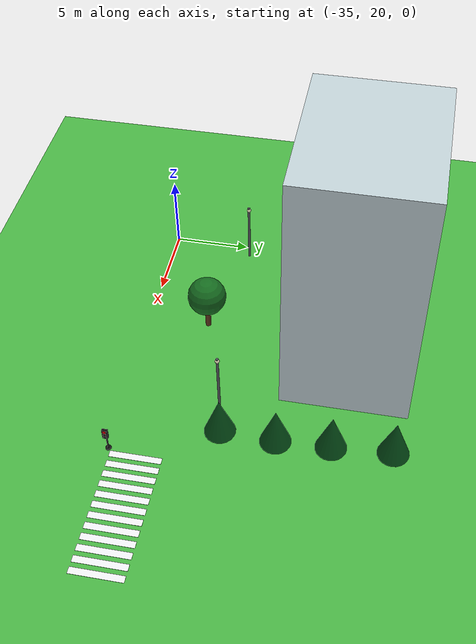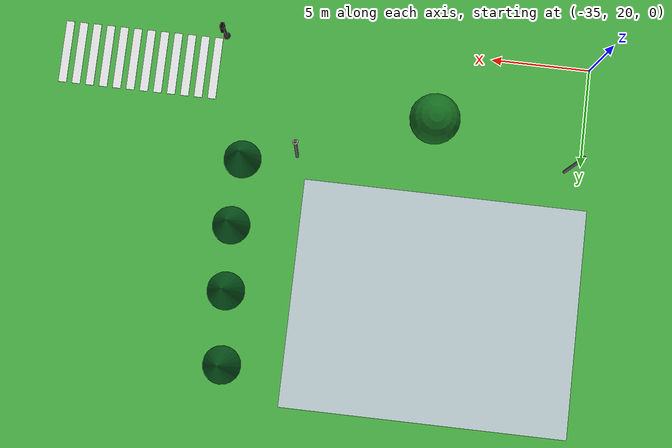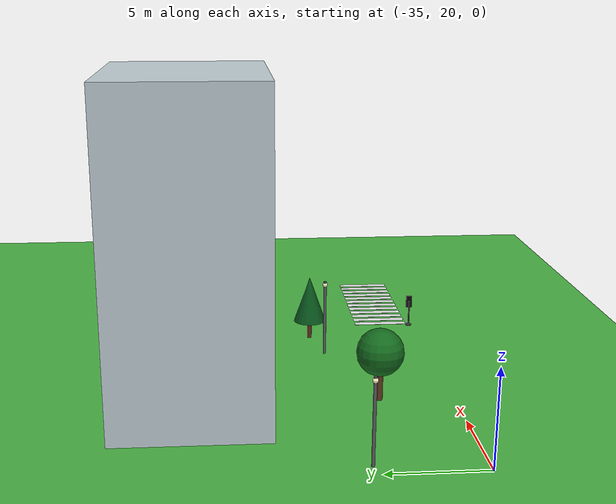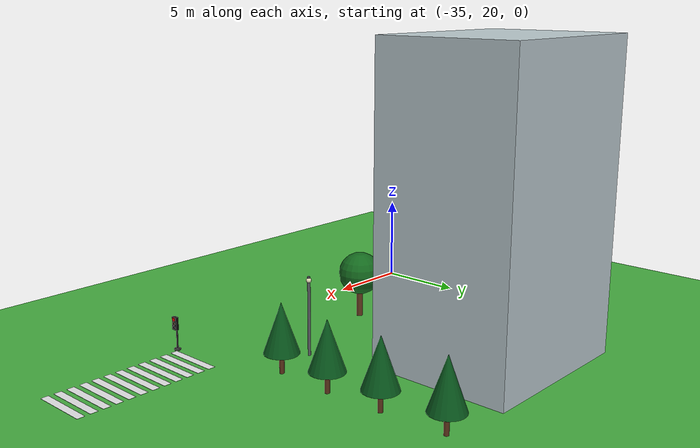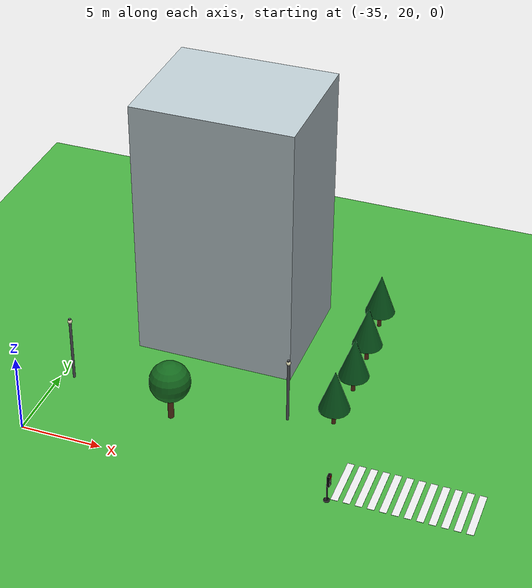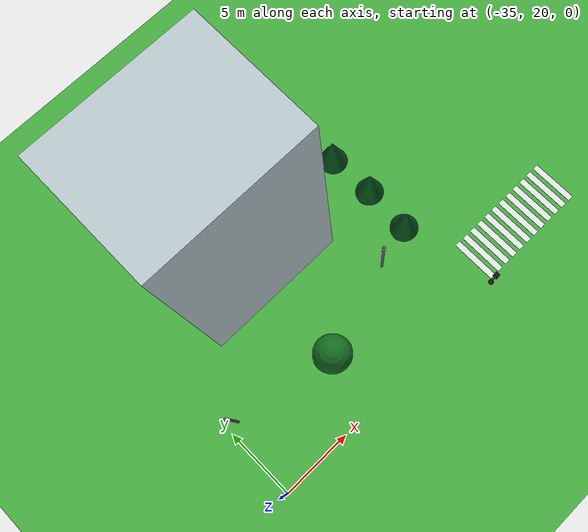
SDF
<sdf version="1.10">
 <world name="city_second">
  <model name="ground_plane">
   <static>true</static>
   <link name="link">
    <collision name="collision">
     <geometry><plane><normal>0 0 1</normal><size>300 300</size></plane></geometry>
    </collision>
    <visual name="visual">
     <geometry><plane><normal>0 0 1</normal><size>300 300</size></plane></geometry>
     <material>
      <ambient>0.280000001 0.689999998 0.25999999 1</ambient>
      <diffuse>0.280000001 0.689999998 0.25999999 1</diffuse>
      <specular>0.0299999993 0.0299999993 0.0299999993 1</specular>
     </material>
    </visual>
    <inertial>
     <mass>1</mass>
     <inertia><ixx>1</ixx><ixy>0</ixy><ixz>0</ixz><iyy>1</iyy><iyz>0</iyz><izz>1</izz></inertia>
    </inertial>
   </link>
  </model>
  <model name="house_3_1_1">
   <static>true</static>
   <pose>-26.744800000000001 33.608600000000003 8.5 0 0 0</pose>
   <link name="link">
    <collision name="collision"><geometry><box><size>10 8 17</size></box></geometry></collision>
    <visual name="visual">
     <geometry><box><size>10 8 17</size></box></geometry>
     <material>
      <ambient>0.74000001 0.800000012 0.819999993 1</ambient>
      <diffuse>0.74000001 0.800000012 0.819999993 1</diffuse>
      <specular>0.0299999993 0.0299999993 0.0299999993 1</specular>
     </material>
    </visual>
    <inertial>
     <mass>1</mass>
     <inertia><ixx>1</ixx><ixy>0</ixy><ixz>0</ixz><iyy>1</iyy><iyz>0</iyz><izz>1</izz></inertia>
    </inertial>
   </link>
  </model>
  <model name="crosswalk_h_1_1_south_7_6">
   <static>true</static>
   <pose>-12.1145 22.0322 0.017000000000000001 0 0 0</pose>
   <link name="stripe_1">
    <collision name="collision">
     <geometry><box><size>0.41999999999999998 3.2000000000000002 0.01</size></box></geometry>
    </collision>
    <visual name="visual">
     <geometry><box><size>0.41999999999999998 3.2000000000000002 0.01</size></box></geometry>
     <material>
      <ambient>0.920000017 0.920000017 0.930000007 1</ambient>
      <diffuse>0.920000017 0.920000017 0.930000007 1</diffuse>
      <specular>0.0299999993 0.0299999993 0.0299999993 1</specular>
     </material>
    </visual>
    <pose>-3.8500000000000001 0 0 0 0 0</pose>
    <inertial>
     <mass>1</mass>
     <inertia><ixx>1</ixx><ixy>0</ixy><ixz>0</ixz><iyy>1</iyy><iyz>0</iyz><izz>1</izz></inertia>
    </inertial>
   </link>
   <link name="stripe_2">
    <collision name="collision">
     <geometry><box><size>0.41999999999999998 3.2000000000000002 0.01</size></box></geometry>
    </collision>
    <visual name="visual">
     <geometry><box><size>0.41999999999999998 3.2000000000000002 0.01</size></box></geometry>
     <material>
      <ambient>0.920000017 0.920000017 0.930000007 1</ambient>
      <diffuse>0.920000017 0.920000017 0.930000007 1</diffuse>
      <specular>0.0299999993 0.0299999993 0.0299999993 1</specular>
     </material>
    </visual>
    <pose>-3.1500000000000004 0 0 0 0 0</pose>
    <inertial>
     <mass>1</mass>
     <inertia><ixx>1</ixx><ixy>0</ixy><ixz>0</ixz><iyy>1</iyy><iyz>0</iyz><izz>1</izz></inertia>
    </inertial>
   </link>
   <link name="stripe_3">
    <collision name="collision">
     <geometry><box><size>0.41999999999999998 3.2000000000000002 0.01</size></box></geometry>
    </collision>
    <visual name="visual">
     <geometry><box><size>0.41999999999999998 3.2000000000000002 0.01</size></box></geometry>
     <material>
      <ambient>0.920000017 0.920000017 0.930000007 1</ambient>
      <diffuse>0.920000017 0.920000017 0.930000007 1</diffuse>
      <specular>0.0299999993 0.0299999993 0.0299999993 1</specular>
     </material>
    </visual>
    <pose>-2.4499999999999993 0 0 0 0 0</pose>
    <inertial>
     <mass>1</mass>
     <inertia><ixx>1</ixx><ixy>0</ixy><ixz>0</ixz><iyy>1</iyy><iyz>0</iyz><izz>1</izz></inertia>
    </inertial>
   </link>
   <link name="stripe_4">
    <collision name="collision">
     <geometry><box><size>0.41999999999999998 3.2000000000000002 0.01</size></box></geometry>
    </collision>
    <visual name="visual">
     <geometry><box><size>0.41999999999999998 3.2000000000000002 0.01</size></box></geometry>
     <material>
      <ambient>0.920000017 0.920000017 0.930000007 1</ambient>
      <diffuse>0.920000017 0.920000017 0.930000007 1</diffuse>
      <specular>0.0299999993 0.0299999993 0.0299999993 1</specular>
     </material>
    </visual>
    <pose>-1.75 0 0 0 0 0</pose>
    <inertial>
     <mass>1</mass>
     <inertia><ixx>1</ixx><ixy>0</ixy><ixz>0</ixz><iyy>1</iyy><iyz>0</iyz><izz>1</izz></inertia>
    </inertial>
   </link>
   <link name="stripe_5">
    <collision name="collision">
     <geometry><box><size>0.41999999999999998 3.2000000000000002 0.01</size></box></geometry>
    </collision>
    <visual name="visual">
     <geometry><box><size>0.41999999999999998 3.2000000000000002 0.01</size></box></geometry>
     <material>
      <ambient>0.920000017 0.920000017 0.930000007 1</ambient>
      <diffuse>0.920000017 0.920000017 0.930000007 1</diffuse>
      <specular>0.0299999993 0.0299999993 0.0299999993 1</specular>
     </material>
    </visual>
    <pose>-1.0500000000000007 0 0 0 0 0</pose>
    <inertial>
     <mass>1</mass>
     <inertia><ixx>1</ixx><ixy>0</ixy><ixz>0</ixz><iyy>1</iyy><iyz>0</iyz><izz>1</izz></inertia>
    </inertial>
   </link>
   <link name="stripe_6">
    <collision name="collision">
     <geometry><box><size>0.41999999999999998 3.2000000000000002 0.01</size></box></geometry>
    </collision>
    <visual name="visual">
     <geometry><box><size>0.41999999999999998 3.2000000000000002 0.01</size></box></geometry>
     <material>
      <ambient>0.920000017 0.920000017 0.930000007 1</ambient>
      <diffuse>0.920000017 0.920000017 0.930000007 1</diffuse>
      <specular>0.0299999993 0.0299999993 0.0299999993 1</specular>
     </material>
    </visual>
    <pose>-0.34999999999999964 0 0 0 0 0</pose>
    <inertial>
     <mass>1</mass>
     <inertia><ixx>1</ixx><ixy>0</ixy><ixz>0</ixz><iyy>1</iyy><iyz>0</iyz><izz>1</izz></inertia>
    </inertial>
   </link>
   <link name="stripe_7">
    <collision name="collision">
     <geometry><box><size>0.41999999999999998 3.2000000000000002 0.01</size></box></geometry>
    </collision>
    <visual name="visual">
     <geometry><box><size>0.41999999999999998 3.2000000000000002 0.01</size></box></geometry>
     <material>
      <ambient>0.920000017 0.920000017 0.930000007 1</ambient>
      <diffuse>0.920000017 0.920000017 0.930000007 1</diffuse>
      <specular>0.0299999993 0.0299999993 0.0299999993 1</specular>
     </material>
    </visual>
    <pose>0.34999999999999964 0 0 0 0 0</pose>
    <inertial>
     <mass>1</mass>
     <inertia><ixx>1</ixx><ixy>0</ixy><ixz>0</ixz><iyy>1</iyy><iyz>0</iyz><izz>1</izz></inertia>
    </inertial>
   </link>
   <link name="stripe_8">
    <collision name="collision">
     <geometry><box><size>0.41999999999999998 3.2000000000000002 0.01</size></box></geometry>
    </collision>
    <visual name="visual">
     <geometry><box><size>0.41999999999999998 3.2000000000000002 0.01</size></box></geometry>
     <material>
      <ambient>0.920000017 0.920000017 0.930000007 1</ambient>
      <diffuse>0.920000017 0.920000017 0.930000007 1</diffuse>
      <specular>0.0299999993 0.0299999993 0.0299999993 1</specular>
     </material>
    </visual>
    <pose>1.0500000000000007 0 0 0 0 0</pose>
    <inertial>
     <mass>1</mass>
     <inertia><ixx>1</ixx><ixy>0</ixy><ixz>0</ixz><iyy>1</iyy><iyz>0</iyz><izz>1</izz></inertia>
    </inertial>
   </link>
   <link name="stripe_9">
    <collision name="collision">
     <geometry><box><size>0.41999999999999998 3.2000000000000002 0.01</size></box></geometry>
    </collision>
    <visual name="visual">
     <geometry><box><size>0.41999999999999998 3.2000000000000002 0.01</size></box></geometry>
     <material>
      <ambient>0.920000017 0.920000017 0.930000007 1</ambient>
      <diffuse>0.920000017 0.920000017 0.930000007 1</diffuse>
      <specular>0.0299999993 0.0299999993 0.0299999993 1</specular>
     </material>
    </visual>
    <pose>1.75 0 0 0 0 0</pose>
    <inertial>
     <mass>1</mass>
     <inertia><ixx>1</ixx><ixy>0</ixy><ixz>0</ixz><iyy>1</iyy><iyz>0</iyz><izz>1</izz></inertia>
    </inertial>
   </link>
   <link name="stripe_10">
    <collision name="collision">
     <geometry><box><size>0.41999999999999998 3.2000000000000002 0.01</size></box></geometry>
    </collision>
    <visual name="visual">
     <geometry><box><size>0.41999999999999998 3.2000000000000002 0.01</size></box></geometry>
     <material>
      <ambient>0.920000017 0.920000017 0.930000007 1</ambient>
      <diffuse>0.920000017 0.920000017 0.930000007 1</diffuse>
      <specular>0.0299999993 0.0299999993 0.0299999993 1</specular>
     </material>
    </visual>
    <pose>2.4499999999999993 0 0 0 0 0</pose>
    <inertial>
     <mass>1</mass>
     <inertia><ixx>1</ixx><ixy>0</ixy><ixz>0</ixz><iyy>1</iyy><iyz>0</iyz><izz>1</izz></inertia>
    </inertial>
   </link>
   <link name="stripe_11">
    <collision name="collision">
     <geometry><box><size>0.41999999999999998 3.2000000000000002 0.01</size></box></geometry>
    </collision>
    <visual name="visual">
     <geometry><box><size>0.41999999999999998 3.2000000000000002 0.01</size></box></geometry>
     <material>
      <ambient>0.920000017 0.920000017 0.930000007 1</ambient>
      <diffuse>0.920000017 0.920000017 0.930000007 1</diffuse>
      <specular>0.0299999993 0.0299999993 0.0299999993 1</specular>
     </material>
    </visual>
    <pose>3.1500000000000004 0 0 0 0 0</pose>
    <inertial>
     <mass>1</mass>
     <inertia><ixx>1</ixx><ixy>0</ixy><ixz>0</ixz><iyy>1</iyy><iyz>0</iyz><izz>1</izz></inertia>
    </inertial>
   </link>
   <link name="stripe_12">
    <collision name="collision">
     <geometry><box><size>0.41999999999999998 3.2000000000000002 0.01</size></box></geometry>
    </collision>
    <visual name="visual">
     <geometry><box><size>0.41999999999999998 3.2000000000000002 0.01</size></box></geometry>
     <material>
      <ambient>0.920000017 0.920000017 0.930000007 1</ambient>
      <diffuse>0.920000017 0.920000017 0.930000007 1</diffuse>
      <specular>0.0299999993 0.0299999993 0.0299999993 1</specular>
     </material>
    </visual>
    <pose>3.8499999999999996 0 0 0 0 0</pose>
    <inertial>
     <mass>1</mass>
     <inertia><ixx>1</ixx><ixy>0</ixy><ixz>0</ixz><iyy>1</iyy><iyz>0</iyz><izz>1</izz></inertia>
    </inertial>
   </link>
  </model>
  <model name="lamp_1_2_16">
   <static>true</static>
   <pose>-34.215200000000003 25.3385 2.2000000000000002 0 0 0</pose>
   <link name="link">
    <collision name="collision">
     <geometry>
      <cylinder><radius>0.080000000000000002</radius><length>4.4000000000000004</length></cylinder>
     </geometry>
    </collision>
    <visual name="pole">
     <geometry>
      <cylinder><radius>0.080000000000000002</radius><length>4.4000000000000004</length></cylinder>
     </geometry>
     <material>
      <ambient>0.349999994 0.360000014 0.379999995 1</ambient>
      <diffuse>0.349999994 0.360000014 0.379999995 1</diffuse>
      <specular>0.0299999993 0.0299999993 0.0299999993 1</specular>
     </material>
    </visual>
    <visual name="lamp_head">
     <pose>0 0 2 0 0 0</pose>
     <geometry><sphere><radius>0.14000000000000001</radius></sphere></geometry>
     <material>
      <ambient>0.959999979 0.939999998 0.779999971 1</ambient>
      <diffuse>0.959999979 0.939999998 0.779999971 1</diffuse>
      <specular>0.0299999993 0.0299999993 0.0299999993 1</specular>
     </material>
    </visual>
    <inertial>
     <mass>1</mass>
     <inertia><ixx>1</ixx><ixy>0</ixy><ixz>0</ixz><iyy>1</iyy><iyz>0</iyz><izz>1</izz></inertia>
    </inertial>
   </link>
  </model>
  <model name="lamp_1_2_17">
   <static>true</static>
   <pose>-20.669599999999999 26.0932 2.2000000000000002 0 0 0</pose>
   <link name="link">
    <collision name="collision">
     <geometry>
      <cylinder><radius>0.080000000000000002</radius><length>4.4000000000000004</length></cylinder>
     </geometry>
    </collision>
    <visual name="pole">
     <geometry>
      <cylinder><radius>0.080000000000000002</radius><length>4.4000000000000004</length></cylinder>
     </geometry>
     <material>
      <ambient>0.349999994 0.360000014 0.379999995 1</ambient>
      <diffuse>0.349999994 0.360000014 0.379999995 1</diffuse>
      <specular>0.0299999993 0.0299999993 0.0299999993 1</specular>
     </material>
    </visual>
    <visual name="lamp_head">
     <pose>0 0 2 0 0 0</pose>
     <geometry><sphere><radius>0.14000000000000001</radius></sphere></geometry>
     <material>
      <ambient>0.959999979 0.939999998 0.779999971 1</ambient>
      <diffuse>0.959999979 0.939999998 0.779999971 1</diffuse>
      <specular>0.0299999993 0.0299999993 0.0299999993 1</specular>
     </material>
    </visual>
    <inertial>
     <mass>1</mass>
     <inertia><ixx>1</ixx><ixy>0</ixy><ixz>0</ixz><iyy>1</iyy><iyz>0</iyz><izz>1</izz></inertia>
    </inertial>
   </link>
  </model>
  <model name="Oak tree_1">
   <static>true</static>
   <pose>-27.205400000000001 23.9285 0 0 0 0</pose>
   <link name="link">
    <collision name="footprint">
     <pose>0 0 0.050000000000000003 0 0 0</pose>
     <geometry>
      <cylinder><radius>0.90000000000000002</radius><length>0.10000000000000001</length></cylinder>
     </geometry>
    </collision>
    <visual name="trunk">
     <pose>0 0 1.1000000000000001 0 0 0</pose>
     <geometry>
      <cylinder><radius>0.17999999999999999</radius><length>2.2000000000000002</length></cylinder>
     </geometry>
     <material>
      <ambient>0.379999995 0.219999999 0.109999999 1</ambient>
      <diffuse>0.379999995 0.219999999 0.109999999 1</diffuse>
      <specular>0.119999997 0.119999997 0.119999997 1</specular>
      <emissive>0 0 0 1</emissive>
     </material>
    </visual>
    <visual name="crown">
     <pose>0 0 2.6499999999999999 0 0 0</pose>
     <geometry><sphere><radius>1.25</radius></sphere></geometry>
     <material>
      <ambient>0.0799999982 0.419999987 0.119999997 1</ambient>
      <diffuse>0.0799999982 0.419999987 0.119999997 1</diffuse>
      <specular>0.119999997 0.119999997 0.119999997 1</specular>
      <emissive>0 0 0 1</emissive>
     </material>
    </visual>
    <inertial>
     <mass>1</mass>
     <inertia><ixx>1</ixx><ixy>0</ixy><ixz>0</ixz><iyy>1</iyy><iyz>0</iyz><izz>1</izz></inertia>
    </inertial>
   </link>
  </model>
  <model name="Pine Tree">
   <static>true</static>
   <pose>-18.249400000000001 36.9146 0 0 0 0</pose>
   <link name="link">
    <collision name="footprint">
     <pose>0 0 0.050000000000000003 0 0 0</pose>
     <geometry>
      <cylinder><radius>0.65000000000000002</radius><length>0.10000000000000001</length></cylinder>
     </geometry>
    </collision>
    <visual name="trunk">
     <pose>0 0 0.90000000000000002 0 0 0</pose>
     <geometry><cylinder><radius>0.13</radius><length>1.8</length></cylinder></geometry>
     <material>
      <ambient>0.360000014 0.200000003 0.100000001 1</ambient>
      <diffuse>0.360000014 0.200000003 0.100000001 1</diffuse>
      <specular>0.119999997 0.119999997 0.119999997 1</specular>
      <emissive>0 0 0 1</emissive>
     </material>
    </visual>
    <visual name="crown">
     <pose>0 0 2.4500000000000002 0 0 0</pose>
     <geometry><cone><radius>0.94999999999999996</radius><length>2.7000000000000002</length></cone></geometry>
     <material>
      <ambient>0.0299999993 0.340000004 0.109999999 1</ambient>
      <diffuse>0.0299999993 0.340000004 0.109999999 1</diffuse>
      <specular>0.119999997 0.119999997 0.119999997 1</specular>
      <emissive>0 0 0 1</emissive>
     </material>
    </visual>
    <inertial>
     <mass>1</mass>
     <inertia><ixx>1</ixx><ixy>0</ixy><ixz>0</ixz><iyy>1</iyy><iyz>0</iyz><izz>1</izz></inertia>
    </inertial>
   </link>
  </model>
  <model name="Pine Tree_0">
   <static>true</static>
   <pose>-18.005600000000001 33.315300000000001 0 0 0 0</pose>
   <link name="link">
    <collision name="footprint">
     <pose>0 0 0.050000000000000003 0 0 0</pose>
     <geometry>
      <cylinder><radius>0.65000000000000002</radius><length>0.10000000000000001</length></cylinder>
     </geometry>
    </collision>
    <visual name="trunk">
     <pose>0 0 0.90000000000000002 0 0 0</pose>
     <geometry><cylinder><radius>0.13</radius><length>1.8</length></cylinder></geometry>
     <material>
      <ambient>0.360000014 0.200000003 0.100000001 1</ambient>
      <diffuse>0.360000014 0.200000003 0.100000001 1</diffuse>
      <specular>0.119999997 0.119999997 0.119999997 1</specular>
      <emissive>0 0 0 1</emissive>
     </material>
    </visual>
    <visual name="crown">
     <pose>0 0 2.4500000000000002 0 0 0</pose>
     <geometry><cone><radius>0.94999999999999996</radius><length>2.7000000000000002</length></cone></geometry>
     <material>
      <ambient>0.0299999993 0.340000004 0.109999999 1</ambient>
      <diffuse>0.0299999993 0.340000004 0.109999999 1</diffuse>
      <specular>0.119999997 0.119999997 0.119999997 1</specular>
      <emissive>0 0 0 1</emissive>
     </material>
    </visual>
    <inertial>
     <mass>1</mass>
     <inertia><ixx>1</ixx><ixy>0</ixy><ixz>0</ixz><iyy>1</iyy><iyz>0</iyz><izz>1</izz></inertia>
    </inertial>
   </link>
  </model>
  <model name="Pine Tree_1">
   <static>true</static>
   <pose>-17.865100000000002 30.0685 0 0 0 0</pose>
   <link name="link">
    <collision name="footprint">
     <pose>0 0 0.050000000000000003 0 0 0</pose>
     <geometry>
      <cylinder><radius>0.65000000000000002</radius><length>0.10000000000000001</length></cylinder>
     </geometry>
    </collision>
    <visual name="trunk">
     <pose>0 0 0.90000000000000002 0 0 0</pose>
     <geometry><cylinder><radius>0.13</radius><length>1.8</length></cylinder></geometry>
     <material>
      <ambient>0.360000014 0.200000003 0.100000001 1</ambient>
      <diffuse>0.360000014 0.200000003 0.100000001 1</diffuse>
      <specular>0.119999997 0.119999997 0.119999997 1</specular>
      <emissive>0 0 0 1</emissive>
     </material>
    </visual>
    <visual name="crown">
     <pose>0 0 2.4500000000000002 0 0 0</pose>
     <geometry><cone><radius>0.94999999999999996</radius><length>2.7000000000000002</length></cone></geometry>
     <material>
      <ambient>0.0299999993 0.340000004 0.109999999 1</ambient>
      <diffuse>0.0299999993 0.340000004 0.109999999 1</diffuse>
      <specular>0.119999997 0.119999997 0.119999997 1</specular>
      <emissive>0 0 0 1</emissive>
     </material>
    </visual>
    <inertial>
     <mass>1</mass>
     <inertia><ixx>1</ixx><ixy>0</ixy><ixz>0</ixz><iyy>1</iyy><iyz>0</iyz><izz>1</izz></inertia>
    </inertial>
   </link>
  </model>
  <model name="Pine Tree_6">
   <static>true</static>
   <pose>-18.019400000000001 26.7318 0 0 0 0</pose>
   <link name="link">
    <collision name="footprint">
     <pose>0 0 0.050000000000000003 0 0 0</pose>
     <geometry>
      <cylinder><radius>0.65000000000000002</radius><length>0.10000000000000001</length></cylinder>
     </geometry>
    </collision>
    <visual name="trunk">
     <pose>0 0 0.90000000000000002 0 0 0</pose>
     <geometry><cylinder><radius>0.13</radius><length>1.8</length></cylinder></geometry>
     <material>
      <ambient>0.360000014 0.200000003 0.100000001 1</ambient>
      <diffuse>0.360000014 0.200000003 0.100000001 1</diffuse>
      <specular>0.119999997 0.119999997 0.119999997 1</specular>
      <emissive>0 0 0 1</emissive>
     </material>
    </visual>
    <visual name="crown">
     <pose>0 0 2.4500000000000002 0 0 0</pose>
     <geometry><cone><radius>0.94999999999999996</radius><length>2.7000000000000002</length></cone></geometry>
     <material>
      <ambient>0.0299999993 0.340000004 0.109999999 1</ambient>
      <diffuse>0.0299999993 0.340000004 0.109999999 1</diffuse>
      <specular>0.119999997 0.119999997 0.119999997 1</specular>
      <emissive>0 0 0 1</emissive>
     </material>
    </visual>
    <inertial>
     <mass>1</mass>
     <inertia><ixx>1</ixx><ixy>0</ixy><ixz>0</ixz><iyy>1</iyy><iyz>0</iyz><izz>1</izz></inertia>
    </inertial>
   </link>
  </model>
  <model name="simple_traffic_light_red_east_6">
   <static>true</static>
   <pose>-16.3438603016297 20.282682133962247 -1.3877787807814457e-17 0 0 -1.5707999672671711</pose>
   <link name="base">
    <pose>0 0 0.040000000000000001 0 0 0</pose>
    <collision name="collision">
     <geometry>
      <cylinder><radius>0.17999999999999999</radius><length>0.080000000000000002</length></cylinder>
     </geometry>
    </collision>
    <visual name="visual">
     <geometry>
      <cylinder><radius>0.17999999999999999</radius><length>0.080000000000000002</length></cylinder>
     </geometry>
     <material>
      <ambient>0.0799999982 0.0799999982 0.0799999982 1</ambient>
      <diffuse>0.0799999982 0.0799999982 0.0799999982 1</diffuse>
      <specular>0.150000006 0.150000006 0.150000006 1</specular>
      <emissive>0 0 0 1</emissive>
     </material>
    </visual>
    <inertial>
     <mass>1</mass>
     <inertia><ixx>1</ixx><ixy>0</ixy><ixz>0</ixz><iyy>1</iyy><iyz>0</iyz><izz>1</izz></inertia>
    </inertial>
   </link>
   <link name="pole">
    <pose>-1.0658141036401503e-14 7.1054273576010019e-15 0.80000000000000004 0 0 -3.3306690738754696e-16</pose>
    <collision name="collision">
     <geometry>
      <cylinder><radius>0.044999999999999998</radius><length>1.6000000000000001</length></cylinder>
     </geometry>
    </collision>
    <visual name="visual">
     <geometry>
      <cylinder><radius>0.044999999999999998</radius><length>1.6000000000000001</length></cylinder>
     </geometry>
     <material>
      <ambient>0.0799999982 0.0799999982 0.0799999982 1</ambient>
      <diffuse>0.0799999982 0.0799999982 0.0799999982 1</diffuse>
      <specular>0.150000006 0.150000006 0.150000006 1</specular>
      <emissive>0 0 0 1</emissive>
     </material>
    </visual>
    <inertial>
     <mass>1</mass>
     <inertia><ixx>1</ixx><ixy>0</ixy><ixz>0</ixz><iyy>1</iyy><iyz>0</iyz><izz>1</izz></inertia>
    </inertial>
   </link>
   <link name="signal_box">
    <pose>3.5527136788005009e-15 0.090000000000003411 1.5500000000000003 0 0 -3.3306690738754696e-16</pose>
    <collision name="collision">
     <geometry><box><size>0.34000000000000002 0.16 0.71999999999999997</size></box></geometry>
    </collision>
    <visual name="visual">
     <geometry><box><size>0.34000000000000002 0.16 0.71999999999999997</size></box></geometry>
     <material>
      <ambient>0.0199999996 0.0199999996 0.0199999996 1</ambient>
      <diffuse>0.0199999996 0.0199999996 0.0199999996 1</diffuse>
      <specular>0.150000006 0.150000006 0.150000006 1</specular>
      <emissive>0 0 0 1</emissive>
     </material>
    </visual>
    <inertial>
     <mass>1</mass>
     <inertia><ixx>1</ixx><ixy>0</ixy><ixz>0</ixz><iyy>1</iyy><iyz>0</iyz><izz>1</izz></inertia>
    </inertial>
   </link>
   <link name="red_lens">
    <pose>-1.4210854715202004e-14 0.18100000000000094 1.78 1.5707963267999998 7.8504622930783579e-17 1.3345785898814093e-15</pose>
    <collision name="collision">
     <geometry><cylinder><radius>0.105</radius><length>0.035000000000000003</length></cylinder></geometry>
    </collision>
    <visual name="visual">
     <geometry><cylinder><radius>0.105</radius><length>0.035000000000000003</length></cylinder></geometry>
     <material>
      <ambient>1 0.0199999996 0.0199999996 1</ambient>
      <diffuse>1 0.0199999996 0.0199999996 1</diffuse>
      <specular>0.150000006 0.150000006 0.150000006 1</specular>
      <emissive>1 0.0199999996 0.0199999996 1</emissive>
     </material>
    </visual>
    <inertial>
     <mass>1</mass>
     <inertia><ixx>1</ixx><ixy>0</ixy><ixz>0</ixz><iyy>1</iyy><iyz>0</iyz><izz>1</izz></inertia>
    </inertial>
   </link>
   <link name="yellow_lens">
    <pose>-1.7763568394002505e-14 0.18199999999999861 1.5500000000000003 1.5707963267999998 7.8504622930783579e-17 1.3345785898814093e-15</pose>
    <collision name="collision">
     <geometry>
      <cylinder><radius>0.095000000000000001</radius><length>0.035000000000000003</length></cylinder>
     </geometry>
    </collision>
    <visual name="visual">
     <geometry>
      <cylinder><radius>0.095000000000000001</radius><length>0.035000000000000003</length></cylinder>
     </geometry>
     <material>
      <ambient>0.119999997 0.100000001 0.0199999996 1</ambient>
      <diffuse>0.119999997 0.100000001 0.0199999996 1</diffuse>
      <specular>0.150000006 0.150000006 0.150000006 1</specular>
      <emissive>0 0 0 1</emissive>
     </material>
    </visual>
    <inertial>
     <mass>1</mass>
     <inertia><ixx>1</ixx><ixy>0</ixy><ixz>0</ixz><iyy>1</iyy><iyz>0</iyz><izz>1</izz></inertia>
    </inertial>
   </link>
   <link name="green_lens">
    <pose>-7.1054273576010019e-15 0.18300000000000693 1.3199999999999998 1.5707963267999998 7.8504622930783579e-17 1.3345785898814093e-15</pose>
    <collision name="collision">
     <geometry><cylinder><radius>0.105</radius><length>0.035000000000000003</length></cylinder></geometry>
    </collision>
    <visual name="visual">
     <geometry><cylinder><radius>0.105</radius><length>0.035000000000000003</length></cylinder></geometry>
     <material>
      <ambient>0.0799999982 0.0799999982 0.0799999982 1</ambient>
      <diffuse>0.0799999982 0.0799999982 0.0799999982 1</diffuse>
      <specular>0.150000006 0.150000006 0.150000006 1</specular>
      <emissive>0 0 0 1</emissive>
     </material>
    </visual>
    <inertial>
     <mass>1</mass>
     <inertia><ixx>1</ixx><ixy>0</ixy><ixz>0</ixz><iyy>1</iyy><iyz>0</iyz><izz>1</izz></inertia>
    </inertial>
   </link>
  </model>
 </world>
</sdf>
